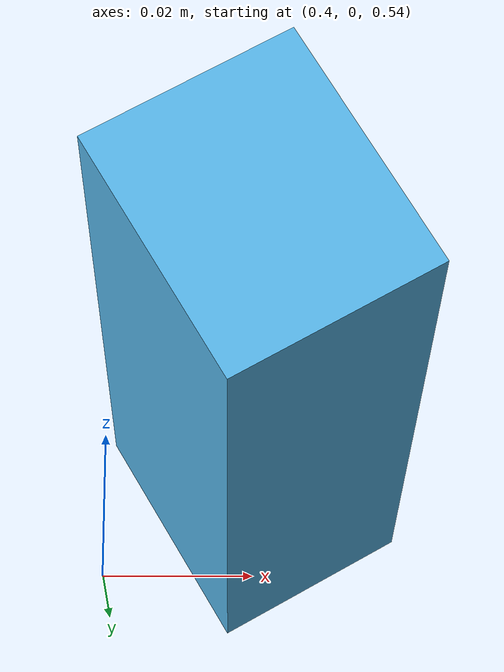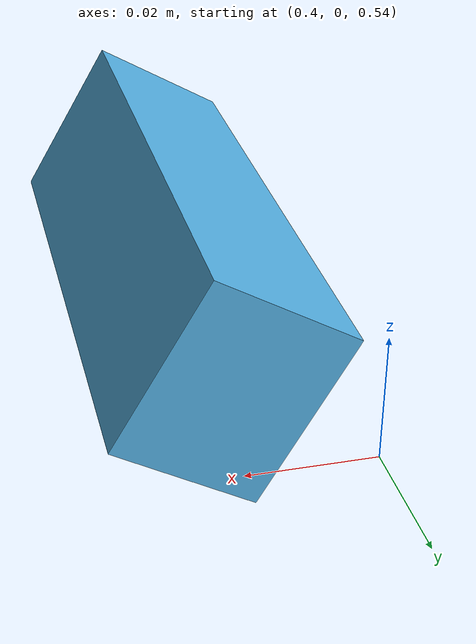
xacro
<?xml version="1.0"?>
<robot name="workspace_depth_camera" xmlns:xacro="http://www.ros.org/wiki/xacro">

  <link name="world"/>

  <joint name="camera_mount_joint" type="fixed">
    <parent link="world"/>
    <child link="camera_link"/>
    <!-- overhead, angled down at the workspace in front of the arm -->
    <origin xyz="0.42 -0.05 0.55" rpy="0 1.0472 0"/>
  </joint>

  <link name="camera_link">
    <inertial>
      <mass value="0.1"/>
      <inertia ixx="1e-6" iyy="1e-6" izz="1e-6" ixy="0" ixz="0" iyz="0"/>
    </inertial>
    <visual>
      <geometry><box size="0.03 0.09 0.025"/></geometry>
    </visual>
    <collision>
      <geometry><box size="0.03 0.09 0.025"/></geometry>
    </collision>
  </link>

  <gazebo reference="camera_link">
    <sensor type="depth" name="workspace_camera">
      <update_rate>10</update_rate>
      <camera>
        <horizontal_fov>1.047</horizontal_fov>
        <image>
          <width>640</width>
          <height>480</height>
          <format>R8G8B8</format>
        </image>
        <clip>
          <near>0.1</near>
          <far>3.0</far>
        </clip>
      </camera>
      <plugin name="workspace_camera_controller" filename="libgazebo_ros_openni_kinect.so">
        <baseline>0.1</baseline>
        <alwaysOn>true</alwaysOn>
        <updateRate>10</updateRate>
        <cameraName>camera</cameraName>
        <imageTopicName>color/image_raw</imageTopicName>
        <cameraInfoTopicName>color/camera_info</cameraInfoTopicName>
        <depthImageTopicName>depth/image_raw</depthImageTopicName>
        <depthImageCameraInfoTopicName>depth/camera_info</depthImageCameraInfoTopicName>
        <pointCloudTopicName>depth/points</pointCloudTopicName>
        <frameName>camera_link</frameName>
        <pointCloudCutoff>0.2</pointCloudCutoff>
        <pointCloudCutoffMax>3.0</pointCloudCutoffMax>
      </plugin>
    </sensor>
  </gazebo>

</robot>
